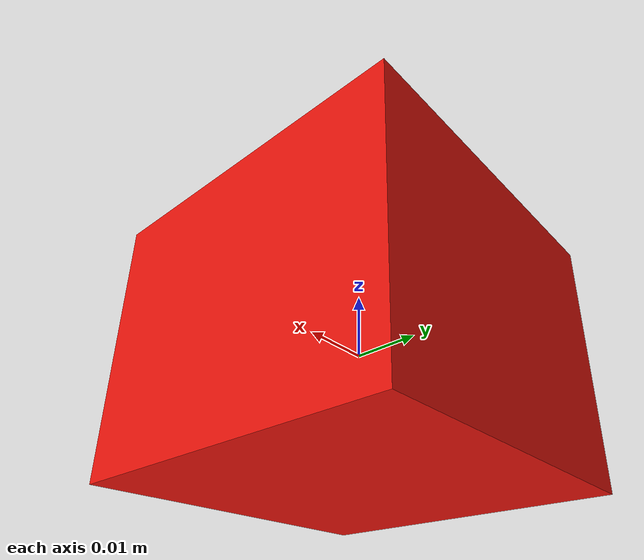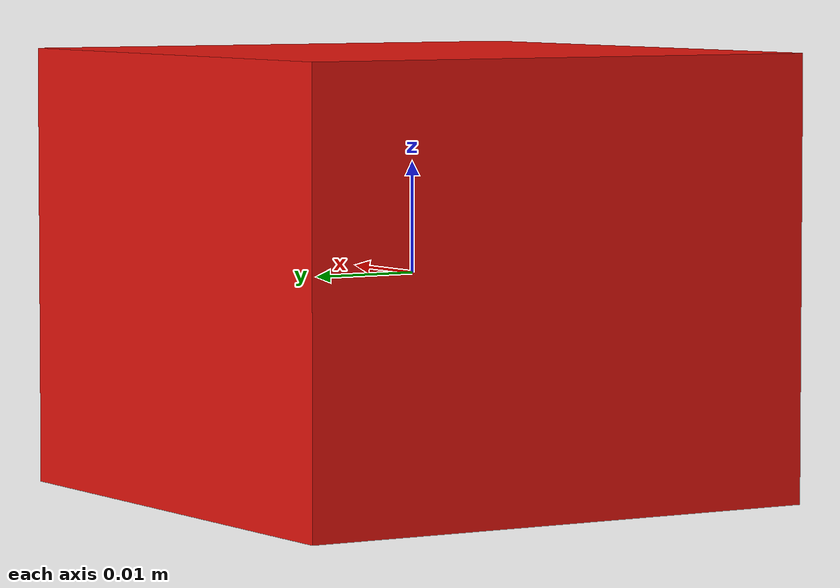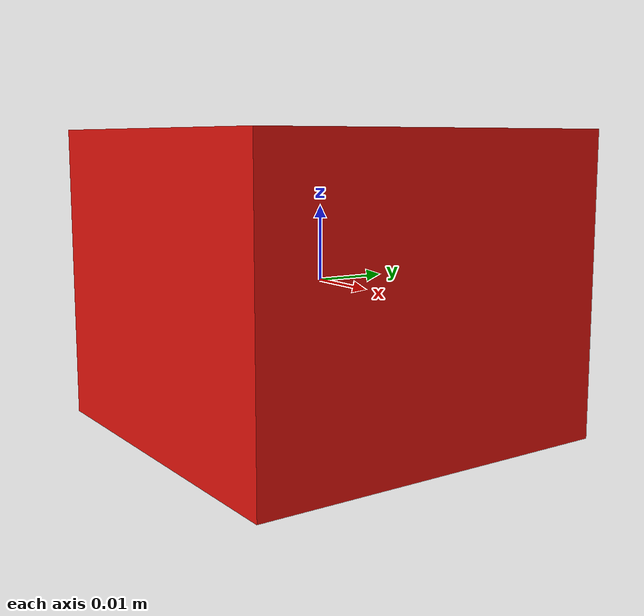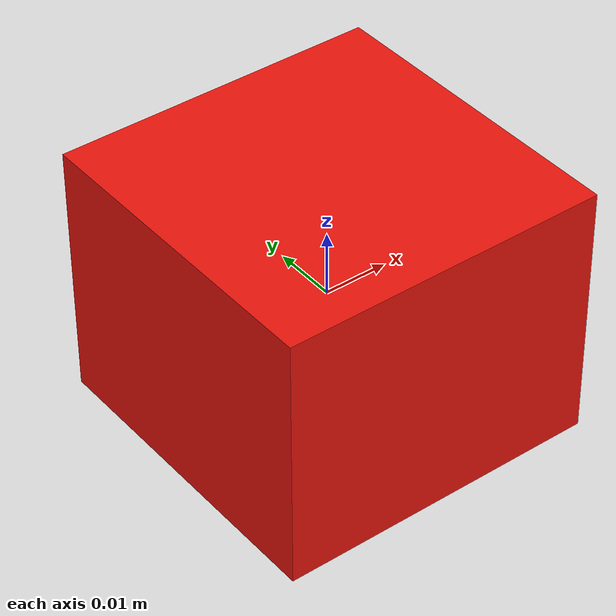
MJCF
<mujoco model="red_block">
  <worldbody>
    <body>
      <body name="object">
        <!-- Flat red box: 5cm x 5cm x 4cm.  Easy to push, clearly visible. -->
        <geom type="box" size="0.025 0.025 0.020" pos="0 0 0"
              rgba="0.92 0.08 0.05 1" group="1" contype="0" conaffinity="0" />
        <geom type="box" size="0.025 0.025 0.020" pos="0 0 0"
              rgba="0.92 0.08 0.05 1" group="0"
              density="350" friction="0.2 0.05 0.0001"
              solimp="0.99 0.99 0.001" solref="0.002 1" />
      </body>
      <site rgba="0 0 0 0" size="0.005" pos="0 0 -0.020" name="bottom_site" group="0" />
      <site rgba="0 0 0 0" size="0.005" pos="0 0 0.020" name="top_site" group="0" />
      <site rgba="0 0 0 0" size="0.025" pos="0.025 0.025 0.000" name="horizontal_radius_site" group="0" />
    </body>
  </worldbody>
</mujoco>
